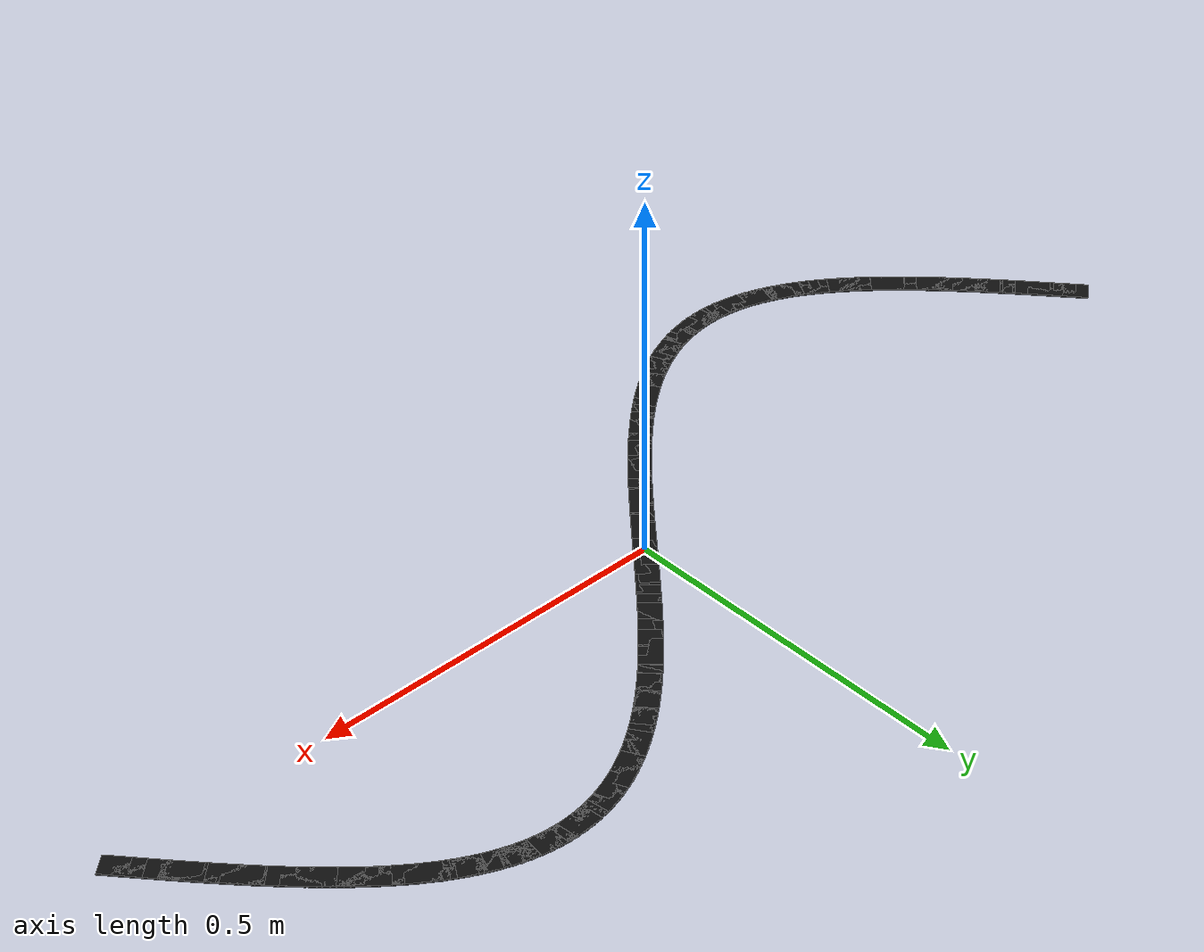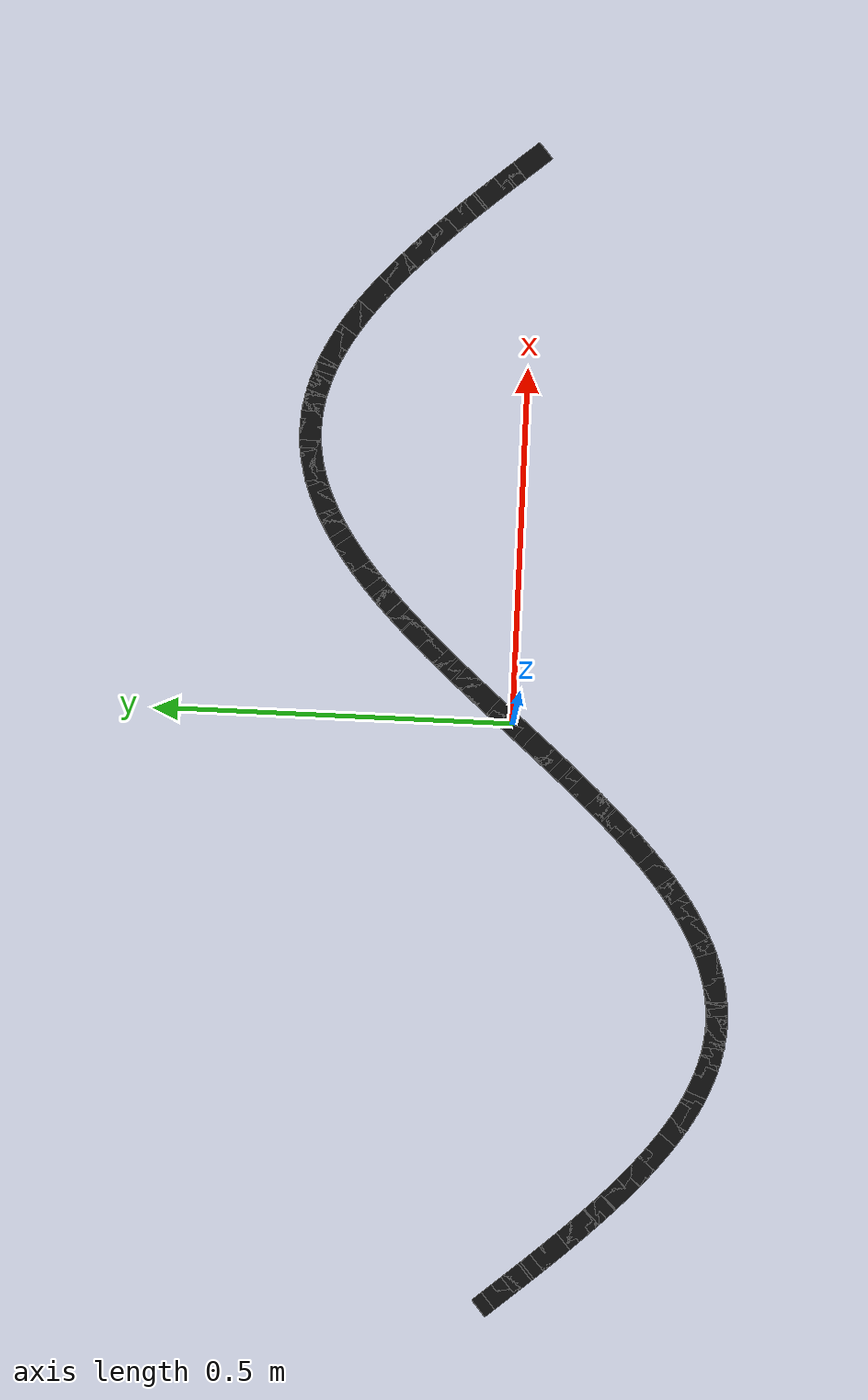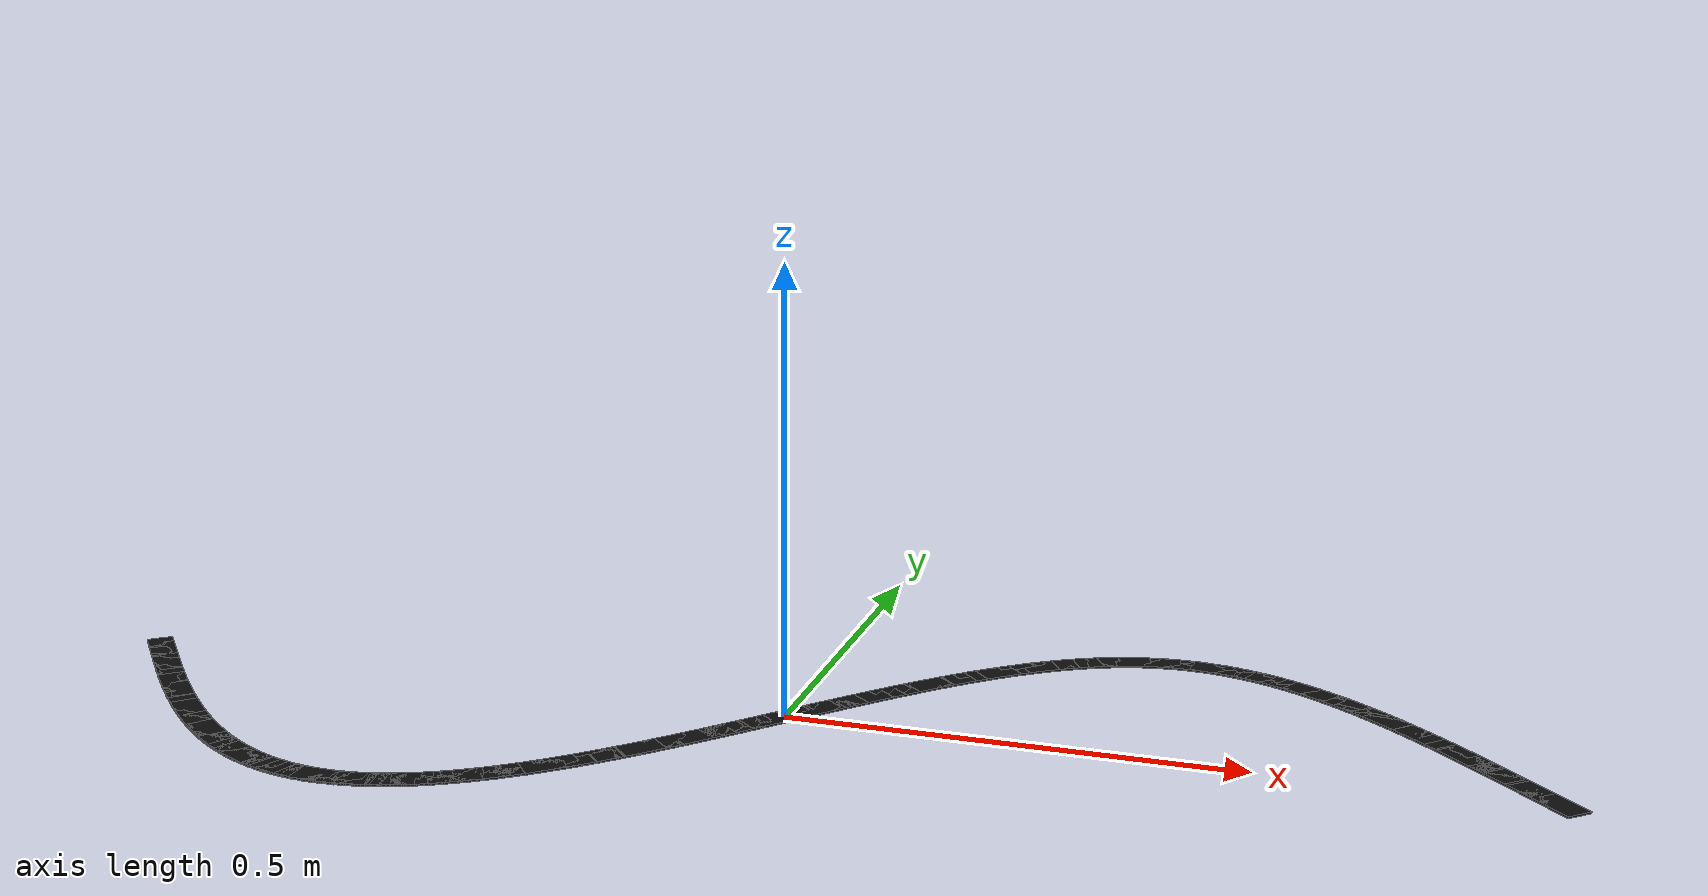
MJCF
<mujoco model="track_s_curve">
  <worldbody>
    <geom name="line_0" type="box" size="0.0236 0.015 0.001" pos="-0.7944 -0.0065 0.001" quat="0.907537 0 0 -0.419971" contype="0" conaffinity="0" group="2" rgba="0.05 0.05 0.05 1"/>
    <geom name="line_1" type="box" size="0.0236 0.015 0.001" pos="-0.7833 -0.0196 0.001" quat="0.907735 0 0 -0.419545" contype="0" conaffinity="0" group="2" rgba="0.05 0.05 0.05 1"/>
    <geom name="line_2" type="box" size="0.0236 0.015 0.001" pos="-0.7722 -0.0327 0.001" quat="0.908130 0 0 -0.418689" contype="0" conaffinity="0" group="2" rgba="0.05 0.05 0.05 1"/>
    <geom name="line_3" type="box" size="0.0235 0.015 0.001" pos="-0.7611 -0.0456 0.001" quat="0.908723 0 0 -0.417400" contype="0" conaffinity="0" group="2" rgba="0.05 0.05 0.05 1"/>
    <geom name="line_4" type="box" size="0.0235 0.015 0.001" pos="-0.7500 -0.0585 0.001" quat="0.909516 0 0 -0.415670" contype="0" conaffinity="0" group="2" rgba="0.05 0.05 0.05 1"/>
    <geom name="line_5" type="box" size="0.0234 0.015 0.001" pos="-0.7389 -0.0713 0.001" quat="0.910509 0 0 -0.413490" contype="0" conaffinity="0" group="2" rgba="0.05 0.05 0.05 1"/>
    <geom name="line_6" type="box" size="0.0234 0.015 0.001" pos="-0.7278 -0.0839 0.001" quat="0.911704 0 0 -0.410849" contype="0" conaffinity="0" group="2" rgba="0.05 0.05 0.05 1"/>
    <geom name="line_7" type="box" size="0.0233 0.015 0.001" pos="-0.7167 -0.0964 0.001" quat="0.913102 0 0 -0.407731" contype="0" conaffinity="0" group="2" rgba="0.05 0.05 0.05 1"/>
    <geom name="line_8" type="box" size="0.0233 0.015 0.001" pos="-0.7056 -0.1087 0.001" quat="0.914706 0 0 -0.404120" contype="0" conaffinity="0" group="2" rgba="0.05 0.05 0.05 1"/>
    <geom name="line_9" type="box" size="0.0232 0.015 0.001" pos="-0.6944 -0.1208 0.001" quat="0.916516 0 0 -0.399997" contype="0" conaffinity="0" group="2" rgba="0.05 0.05 0.05 1"/>
    <geom name="line_10" type="box" size="0.0231 0.015 0.001" pos="-0.6833 -0.1327 0.001" quat="0.918535 0 0 -0.395339" contype="0" conaffinity="0" group="2" rgba="0.05 0.05 0.05 1"/>
    <geom name="line_11" type="box" size="0.0230 0.015 0.001" pos="-0.6722 -0.1443 0.001" quat="0.920764 0 0 -0.390121" contype="0" conaffinity="0" group="2" rgba="0.05 0.05 0.05 1"/>
    <geom name="line_12" type="box" size="0.0229 0.015 0.001" pos="-0.6611 -0.1556 0.001" quat="0.923202 0 0 -0.384314" contype="0" conaffinity="0" group="2" rgba="0.05 0.05 0.05 1"/>
    <geom name="line_13" type="box" size="0.0228 0.015 0.001" pos="-0.6500 -0.1666 0.001" quat="0.925851 0 0 -0.377889" contype="0" conaffinity="0" group="2" rgba="0.05 0.05 0.05 1"/>
    <geom name="line_14" type="box" size="0.0227 0.015 0.001" pos="-0.6389 -0.1774 0.001" quat="0.928709 0 0 -0.370809" contype="0" conaffinity="0" group="2" rgba="0.05 0.05 0.05 1"/>
    <geom name="line_15" type="box" size="0.0225 0.015 0.001" pos="-0.6278 -0.1877 0.001" quat="0.931774 0 0 -0.363039" contype="0" conaffinity="0" group="2" rgba="0.05 0.05 0.05 1"/>
    <geom name="line_16" type="box" size="0.0224 0.015 0.001" pos="-0.6167 -0.1978 0.001" quat="0.935041 0 0 -0.354539" contype="0" conaffinity="0" group="2" rgba="0.05 0.05 0.05 1"/>
    <geom name="line_17" type="box" size="0.0223 0.015 0.001" pos="-0.6056 -0.2074 0.001" quat="0.938505 0 0 -0.345266" contype="0" conaffinity="0" group="2" rgba="0.05 0.05 0.05 1"/>
    <geom name="line_18" type="box" size="0.0222 0.015 0.001" pos="-0.5944 -0.2167 0.001" quat="0.942156 0 0 -0.335176" contype="0" conaffinity="0" group="2" rgba="0.05 0.05 0.05 1"/>
    <geom name="line_19" type="box" size="0.0220 0.015 0.001" pos="-0.5833 -0.2255 0.001" quat="0.945981 0 0 -0.324222" contype="0" conaffinity="0" group="2" rgba="0.05 0.05 0.05 1"/>
    <geom name="line_20" type="box" size="0.0219 0.015 0.001" pos="-0.5722 -0.2339 0.001" quat="0.949964 0 0 -0.312359" contype="0" conaffinity="0" group="2" rgba="0.05 0.05 0.05 1"/>
    <geom name="line_21" type="box" size="0.0218 0.015 0.001" pos="-0.5611 -0.2419 0.001" quat="0.954084 0 0 -0.299538" contype="0" conaffinity="0" group="2" rgba="0.05 0.05 0.05 1"/>
    <geom name="line_22" type="box" size="0.0216 0.015 0.001" pos="-0.5500 -0.2494 0.001" quat="0.958314 0 0 -0.285716" contype="0" conaffinity="0" group="2" rgba="0.05 0.05 0.05 1"/>
    <geom name="line_23" type="box" size="0.0215 0.015 0.001" pos="-0.5389 -0.2564 0.001" quat="0.962621 0 0 -0.270851" contype="0" conaffinity="0" group="2" rgba="0.05 0.05 0.05 1"/>
    <geom name="line_24" type="box" size="0.0214 0.015 0.001" pos="-0.5278 -0.2630 0.001" quat="0.966966 0 0 -0.254907" contype="0" conaffinity="0" group="2" rgba="0.05 0.05 0.05 1"/>
    <geom name="line_25" type="box" size="0.0213 0.015 0.001" pos="-0.5167 -0.2690 0.001" quat="0.971300 0 0 -0.237858" contype="0" conaffinity="0" group="2" rgba="0.05 0.05 0.05 1"/>
    <geom name="line_26" type="box" size="0.0211 0.015 0.001" pos="-0.5056 -0.2745 0.001" quat="0.975570 0 0 -0.219688" contype="0" conaffinity="0" group="2" rgba="0.05 0.05 0.05 1"/>
    <geom name="line_27" type="box" size="0.0210 0.015 0.001" pos="-0.4944 -0.2795 0.001" quat="0.979715 0 0 -0.200396" contype="0" conaffinity="0" group="2" rgba="0.05 0.05 0.05 1"/>
    <geom name="line_28" type="box" size="0.0209 0.015 0.001" pos="-0.4833 -0.2840 0.001" quat="0.983667 0 0 -0.180000" contype="0" conaffinity="0" group="2" rgba="0.05 0.05 0.05 1"/>
    <geom name="line_29" type="box" size="0.0208 0.015 0.001" pos="-0.4722 -0.2879 0.001" quat="0.987353 0 0 -0.158540" contype="0" conaffinity="0" group="2" rgba="0.05 0.05 0.05 1"/>
    <geom name="line_30" type="box" size="0.0208 0.015 0.001" pos="-0.4611 -0.2913 0.001" quat="0.990698 0 0 -0.136078" contype="0" conaffinity="0" group="2" rgba="0.05 0.05 0.05 1"/>
    <geom name="line_31" type="box" size="0.0207 0.015 0.001" pos="-0.4500 -0.2942 0.001" quat="0.993628 0 0 -0.112707" contype="0" conaffinity="0" group="2" rgba="0.05 0.05 0.05 1"/>
    <geom name="line_32" type="box" size="0.0206 0.015 0.001" pos="-0.4389 -0.2964 0.001" quat="0.996072 0 0 -0.088544" contype="0" conaffinity="0" group="2" rgba="0.05 0.05 0.05 1"/>
    <geom name="line_33" type="box" size="0.0206 0.015 0.001" pos="-0.4278 -0.2981 0.001" quat="0.997967 0 0 -0.063731" contype="0" conaffinity="0" group="2" rgba="0.05 0.05 0.05 1"/>
    <geom name="line_34" type="box" size="0.0206 0.015 0.001" pos="-0.4167 -0.2993 0.001" quat="0.999261 0 0 -0.038437" contype="0" conaffinity="0" group="2" rgba="0.05 0.05 0.05 1"/>
    <geom name="line_35" type="box" size="0.0206 0.015 0.001" pos="-0.4056 -0.2999 0.001" quat="0.999917 0 0 -0.012846" contype="0" conaffinity="0" group="2" rgba="0.05 0.05 0.05 1"/>
    <geom name="line_36" type="box" size="0.0206 0.015 0.001" pos="-0.3944 -0.2999 0.001" quat="0.999917 0 0 0.012846" contype="0" conaffinity="0" group="2" rgba="0.05 0.05 0.05 1"/>
    <geom name="line_37" type="box" size="0.0206 0.015 0.001" pos="-0.3833 -0.2993 0.001" quat="0.999261 0 0 0.038437" contype="0" conaffinity="0" group="2" rgba="0.05 0.05 0.05 1"/>
    <geom name="line_38" type="box" size="0.0206 0.015 0.001" pos="-0.3722 -0.2981 0.001" quat="0.997967 0 0 0.063731" contype="0" conaffinity="0" group="2" rgba="0.05 0.05 0.05 1"/>
    <geom name="line_39" type="box" size="0.0206 0.015 0.001" pos="-0.3611 -0.2964 0.001" quat="0.996072 0 0 0.088544" contype="0" conaffinity="0" group="2" rgba="0.05 0.05 0.05 1"/>
    <geom name="line_40" type="box" size="0.0207 0.015 0.001" pos="-0.3500 -0.2942 0.001" quat="0.993628 0 0 0.112707" contype="0" conaffinity="0" group="2" rgba="0.05 0.05 0.05 1"/>
    <geom name="line_41" type="box" size="0.0208 0.015 0.001" pos="-0.3389 -0.2913 0.001" quat="0.990698 0 0 0.136078" contype="0" conaffinity="0" group="2" rgba="0.05 0.05 0.05 1"/>
    <geom name="line_42" type="box" size="0.0208 0.015 0.001" pos="-0.3278 -0.2879 0.001" quat="0.987353 0 0 0.158540" contype="0" conaffinity="0" group="2" rgba="0.05 0.05 0.05 1"/>
    <geom name="line_43" type="box" size="0.0209 0.015 0.001" pos="-0.3167 -0.2840 0.001" quat="0.983667 0 0 0.180000" contype="0" conaffinity="0" group="2" rgba="0.05 0.05 0.05 1"/>
    <geom name="line_44" type="box" size="0.0210 0.015 0.001" pos="-0.3056 -0.2795 0.001" quat="0.979715 0 0 0.200396" contype="0" conaffinity="0" group="2" rgba="0.05 0.05 0.05 1"/>
    <geom name="line_45" type="box" size="0.0211 0.015 0.001" pos="-0.2944 -0.2745 0.001" quat="0.975570 0 0 0.219688" contype="0" conaffinity="0" group="2" rgba="0.05 0.05 0.05 1"/>
    <geom name="line_46" type="box" size="0.0213 0.015 0.001" pos="-0.2833 -0.2690 0.001" quat="0.971300 0 0 0.237858" contype="0" conaffinity="0" group="2" rgba="0.05 0.05 0.05 1"/>
    <geom name="line_47" type="box" size="0.0214 0.015 0.001" pos="-0.2722 -0.2630 0.001" quat="0.966966 0 0 0.254907" contype="0" conaffinity="0" group="2" rgba="0.05 0.05 0.05 1"/>
    <geom name="line_48" type="box" size="0.0215 0.015 0.001" pos="-0.2611 -0.2564 0.001" quat="0.962621 0 0 0.270851" contype="0" conaffinity="0" group="2" rgba="0.05 0.05 0.05 1"/>
    <geom name="line_49" type="box" size="0.0216 0.015 0.001" pos="-0.2500 -0.2494 0.001" quat="0.958314 0 0 0.285716" contype="0" conaffinity="0" group="2" rgba="0.05 0.05 0.05 1"/>
    <geom name="line_50" type="box" size="0.0218 0.015 0.001" pos="-0.2389 -0.2419 0.001" quat="0.954084 0 0 0.299538" contype="0" conaffinity="0" group="2" rgba="0.05 0.05 0.05 1"/>
    <geom name="line_51" type="box" size="0.0219 0.015 0.001" pos="-0.2278 -0.2339 0.001" quat="0.949964 0 0 0.312359" contype="0" conaffinity="0" group="2" rgba="0.05 0.05 0.05 1"/>
    <geom name="line_52" type="box" size="0.0220 0.015 0.001" pos="-0.2167 -0.2255 0.001" quat="0.945981 0 0 0.324222" contype="0" conaffinity="0" group="2" rgba="0.05 0.05 0.05 1"/>
    <geom name="line_53" type="box" size="0.0222 0.015 0.001" pos="-0.2056 -0.2167 0.001" quat="0.942156 0 0 0.335176" contype="0" conaffinity="0" group="2" rgba="0.05 0.05 0.05 1"/>
    <geom name="line_54" type="box" size="0.0223 0.015 0.001" pos="-0.1944 -0.2074 0.001" quat="0.938505 0 0 0.345266" contype="0" conaffinity="0" group="2" rgba="0.05 0.05 0.05 1"/>
    <geom name="line_55" type="box" size="0.0224 0.015 0.001" pos="-0.1833 -0.1978 0.001" quat="0.935041 0 0 0.354539" contype="0" conaffinity="0" group="2" rgba="0.05 0.05 0.05 1"/>
    <geom name="line_56" type="box" size="0.0225 0.015 0.001" pos="-0.1722 -0.1877 0.001" quat="0.931774 0 0 0.363039" contype="0" conaffinity="0" group="2" rgba="0.05 0.05 0.05 1"/>
    <geom name="line_57" type="box" size="0.0227 0.015 0.001" pos="-0.1611 -0.1774 0.001" quat="0.928709 0 0 0.370809" contype="0" conaffinity="0" group="2" rgba="0.05 0.05 0.05 1"/>
    <geom name="line_58" type="box" size="0.0228 0.015 0.001" pos="-0.1500 -0.1666 0.001" quat="0.925851 0 0 0.377889" contype="0" conaffinity="0" group="2" rgba="0.05 0.05 0.05 1"/>
    <geom name="line_59" type="box" size="0.0229 0.015 0.001" pos="-0.1389 -0.1556 0.001" quat="0.923202 0 0 0.384314" contype="0" conaffinity="0" group="2" rgba="0.05 0.05 0.05 1"/>
    <geom name="line_60" type="box" size="0.0230 0.015 0.001" pos="-0.1278 -0.1443 0.001" quat="0.920764 0 0 0.390121" contype="0" conaffinity="0" group="2" rgba="0.05 0.05 0.05 1"/>
    <geom name="line_61" type="box" size="0.0231 0.015 0.001" pos="-0.1167 -0.1327 0.001" quat="0.918535 0 0 0.395339" contype="0" conaffinity="0" group="2" rgba="0.05 0.05 0.05 1"/>
    <geom name="line_62" type="box" size="0.0232 0.015 0.001" pos="-0.1056 -0.1208 0.001" quat="0.916516 0 0 0.399997" contype="0" conaffinity="0" group="2" rgba="0.05 0.05 0.05 1"/>
    <geom name="line_63" type="box" size="0.0233 0.015 0.001" pos="-0.0944 -0.1087 0.001" quat="0.914706 0 0 0.404120" contype="0" conaffinity="0" group="2" rgba="0.05 0.05 0.05 1"/>
    <geom name="line_64" type="box" size="0.0233 0.015 0.001" pos="-0.0833 -0.0964 0.001" quat="0.913102 0 0 0.407731" contype="0" conaffinity="0" group="2" rgba="0.05 0.05 0.05 1"/>
    <geom name="line_65" type="box" size="0.0234 0.015 0.001" pos="-0.0722 -0.0839 0.001" quat="0.911704 0 0 0.410849" contype="0" conaffinity="0" group="2" rgba="0.05 0.05 0.05 1"/>
    <geom name="line_66" type="box" size="0.0234 0.015 0.001" pos="-0.0611 -0.0713 0.001" quat="0.910509 0 0 0.413490" contype="0" conaffinity="0" group="2" rgba="0.05 0.05 0.05 1"/>
    <geom name="line_67" type="box" size="0.0235 0.015 0.001" pos="-0.0500 -0.0585 0.001" quat="0.909516 0 0 0.415670" contype="0" conaffinity="0" group="2" rgba="0.05 0.05 0.05 1"/>
    <geom name="line_68" type="box" size="0.0235 0.015 0.001" pos="-0.0389 -0.0456 0.001" quat="0.908723 0 0 0.417400" contype="0" conaffinity="0" group="2" rgba="0.05 0.05 0.05 1"/>
    <geom name="line_69" type="box" size="0.0236 0.015 0.001" pos="-0.0278 -0.0327 0.001" quat="0.908130 0 0 0.418689" contype="0" conaffinity="0" group="2" rgba="0.05 0.05 0.05 1"/>
    <geom name="line_70" type="box" size="0.0236 0.015 0.001" pos="-0.0167 -0.0196 0.001" quat="0.907735 0 0 0.419545" contype="0" conaffinity="0" group="2" rgba="0.05 0.05 0.05 1"/>
    <geom name="line_71" type="box" size="0.0236 0.015 0.001" pos="-0.0056 -0.0065 0.001" quat="0.907537 0 0 0.419971" contype="0" conaffinity="0" group="2" rgba="0.05 0.05 0.05 1"/>
    <geom name="line_72" type="box" size="0.0236 0.015 0.001" pos="0.0056 0.0065 0.001" quat="0.907537 0 0 0.419971" contype="0" conaffinity="0" group="2" rgba="0.05 0.05 0.05 1"/>
    <geom name="line_73" type="box" size="0.0236 0.015 0.001" pos="0.0167 0.0196 0.001" quat="0.907735 0 0 0.419545" contype="0" conaffinity="0" group="2" rgba="0.05 0.05 0.05 1"/>
    <geom name="line_74" type="box" size="0.0236 0.015 0.001" pos="0.0278 0.0327 0.001" quat="0.908130 0 0 0.418689" contype="0" conaffinity="0" group="2" rgba="0.05 0.05 0.05 1"/>
    <geom name="line_75" type="box" size="0.0235 0.015 0.001" pos="0.0389 0.0456 0.001" quat="0.908723 0 0 0.417400" contype="0" conaffinity="0" group="2" rgba="0.05 0.05 0.05 1"/>
    <geom name="line_76" type="box" size="0.0235 0.015 0.001" pos="0.0500 0.0585 0.001" quat="0.909516 0 0 0.415670" contype="0" conaffinity="0" group="2" rgba="0.05 0.05 0.05 1"/>
    <geom name="line_77" type="box" size="0.0234 0.015 0.001" pos="0.0611 0.0713 0.001" quat="0.910509 0 0 0.413490" contype="0" conaffinity="0" group="2" rgba="0.05 0.05 0.05 1"/>
    <geom name="line_78" type="box" size="0.0234 0.015 0.001" pos="0.0722 0.0839 0.001" quat="0.911704 0 0 0.410849" contype="0" conaffinity="0" group="2" rgba="0.05 0.05 0.05 1"/>
    <geom name="line_79" type="box" size="0.0233 0.015 0.001" pos="0.0833 0.0964 0.001" quat="0.913102 0 0 0.407731" contype="0" conaffinity="0" group="2" rgba="0.05 0.05 0.05 1"/>
    <geom name="line_80" type="box" size="0.0233 0.015 0.001" pos="0.0944 0.1087 0.001" quat="0.914706 0 0 0.404120" contype="0" conaffinity="0" group="2" rgba="0.05 0.05 0.05 1"/>
    <geom name="line_81" type="box" size="0.0232 0.015 0.001" pos="0.1056 0.1208 0.001" quat="0.916516 0 0 0.399997" contype="0" conaffinity="0" group="2" rgba="0.05 0.05 0.05 1"/>
    <geom name="line_82" type="box" size="0.0231 0.015 0.001" pos="0.1167 0.1327 0.001" quat="0.918535 0 0 0.395339" contype="0" conaffinity="0" group="2" rgba="0.05 0.05 0.05 1"/>
    <geom name="line_83" type="box" size="0.0230 0.015 0.001" pos="0.1278 0.1443 0.001" quat="0.920764 0 0 0.390121" contype="0" conaffinity="0" group="2" rgba="0.05 0.05 0.05 1"/>
    <geom name="line_84" type="box" size="0.0229 0.015 0.001" pos="0.1389 0.1556 0.001" quat="0.923202 0 0 0.384314" contype="0" conaffinity="0" group="2" rgba="0.05 0.05 0.05 1"/>
    <geom name="line_85" type="box" size="0.0228 0.015 0.001" pos="0.1500 0.1666 0.001" quat="0.925851 0 0 0.377889" contype="0" conaffinity="0" group="2" rgba="0.05 0.05 0.05 1"/>
    <geom name="line_86" type="box" size="0.0227 0.015 0.001" pos="0.1611 0.1774 0.001" quat="0.928709 0 0 0.370809" contype="0" conaffinity="0" group="2" rgba="0.05 0.05 0.05 1"/>
    <geom name="line_87" type="box" size="0.0225 0.015 0.001" pos="0.1722 0.1877 0.001" quat="0.931774 0 0 0.363039" contype="0" conaffinity="0" group="2" rgba="0.05 0.05 0.05 1"/>
    <geom name="line_88" type="box" size="0.0224 0.015 0.001" pos="0.1833 0.1978 0.001" quat="0.935041 0 0 0.354539" contype="0" conaffinity="0" group="2" rgba="0.05 0.05 0.05 1"/>
    <geom name="line_89" type="box" size="0.0223 0.015 0.001" pos="0.1944 0.2074 0.001" quat="0.938505 0 0 0.345266" contype="0" conaffinity="0" group="2" rgba="0.05 0.05 0.05 1"/>
    <geom name="line_90" type="box" size="0.0222 0.015 0.001" pos="0.2056 0.2167 0.001" quat="0.942156 0 0 0.335176" contype="0" conaffinity="0" group="2" rgba="0.05 0.05 0.05 1"/>
    <geom name="line_91" type="box" size="0.0220 0.015 0.001" pos="0.2167 0.2255 0.001" quat="0.945981 0 0 0.324222" contype="0" conaffinity="0" group="2" rgba="0.05 0.05 0.05 1"/>
    <geom name="line_92" type="box" size="0.0219 0.015 0.001" pos="0.2278 0.2339 0.001" quat="0.949964 0 0 0.312359" contype="0" conaffinity="0" group="2" rgba="0.05 0.05 0.05 1"/>
    <geom name="line_93" type="box" size="0.0218 0.015 0.001" pos="0.2389 0.2419 0.001" quat="0.954084 0 0 0.299538" contype="0" conaffinity="0" group="2" rgba="0.05 0.05 0.05 1"/>
    <geom name="line_94" type="box" size="0.0216 0.015 0.001" pos="0.2500 0.2494 0.001" quat="0.958314 0 0 0.285716" contype="0" conaffinity="0" group="2" rgba="0.05 0.05 0.05 1"/>
    <geom name="line_95" type="box" size="0.0215 0.015 0.001" pos="0.2611 0.2564 0.001" quat="0.962621 0 0 0.270851" contype="0" conaffinity="0" group="2" rgba="0.05 0.05 0.05 1"/>
    <geom name="line_96" type="box" size="0.0214 0.015 0.001" pos="0.2722 0.2630 0.001" quat="0.966966 0 0 0.254907" contype="0" conaffinity="0" group="2" rgba="0.05 0.05 0.05 1"/>
    <geom name="line_97" type="box" size="0.0213 0.015 0.001" pos="0.2833 0.2690 0.001" quat="0.971300 0 0 0.237858" contype="0" conaffinity="0" group="2" rgba="0.05 0.05 0.05 1"/>
    <geom name="line_98" type="box" size="0.0211 0.015 0.001" pos="0.2944 0.2745 0.001" quat="0.975570 0 0 0.219688" contype="0" conaffinity="0" group="2" rgba="0.05 0.05 0.05 1"/>
    <geom name="line_99" type="box" size="0.0210 0.015 0.001" pos="0.3056 0.2795 0.001" quat="0.979715 0 0 0.200396" contype="0" conaffinity="0" group="2" rgba="0.05 0.05 0.05 1"/>
    <geom name="line_100" type="box" size="0.0209 0.015 0.001" pos="0.3167 0.2840 0.001" quat="0.983667 0 0 0.180000" contype="0" conaffinity="0" group="2" rgba="0.05 0.05 0.05 1"/>
    <geom name="line_101" type="box" size="0.0208 0.015 0.001" pos="0.3278 0.2879 0.001" quat="0.987353 0 0 0.158540" contype="0" conaffinity="0" group="2" rgba="0.05 0.05 0.05 1"/>
    <geom name="line_102" type="box" size="0.0208 0.015 0.001" pos="0.3389 0.2913 0.001" quat="0.990698 0 0 0.136078" contype="0" conaffinity="0" group="2" rgba="0.05 0.05 0.05 1"/>
    <geom name="line_103" type="box" size="0.0207 0.015 0.001" pos="0.3500 0.2942 0.001" quat="0.993628 0 0 0.112707" contype="0" conaffinity="0" group="2" rgba="0.05 0.05 0.05 1"/>
    <geom name="line_104" type="box" size="0.0206 0.015 0.001" pos="0.3611 0.2964 0.001" quat="0.996072 0 0 0.088544" contype="0" conaffinity="0" group="2" rgba="0.05 0.05 0.05 1"/>
    <geom name="line_105" type="box" size="0.0206 0.015 0.001" pos="0.3722 0.2981 0.001" quat="0.997967 0 0 0.063731" contype="0" conaffinity="0" group="2" rgba="0.05 0.05 0.05 1"/>
    <geom name="line_106" type="box" size="0.0206 0.015 0.001" pos="0.3833 0.2993 0.001" quat="0.999261 0 0 0.038437" contype="0" conaffinity="0" group="2" rgba="0.05 0.05 0.05 1"/>
    <geom name="line_107" type="box" size="0.0206 0.015 0.001" pos="0.3944 0.2999 0.001" quat="0.999917 0 0 0.012846" contype="0" conaffinity="0" group="2" rgba="0.05 0.05 0.05 1"/>
    <geom name="line_108" type="box" size="0.0206 0.015 0.001" pos="0.4056 0.2999 0.001" quat="0.999917 0 0 -0.012846" contype="0" conaffinity="0" group="2" rgba="0.05 0.05 0.05 1"/>
    <geom name="line_109" type="box" size="0.0206 0.015 0.001" pos="0.4167 0.2993 0.001" quat="0.999261 0 0 -0.038437" contype="0" conaffinity="0" group="2" rgba="0.05 0.05 0.05 1"/>
    <geom name="line_110" type="box" size="0.0206 0.015 0.001" pos="0.4278 0.2981 0.001" quat="0.997967 0 0 -0.063731" contype="0" conaffinity="0" group="2" rgba="0.05 0.05 0.05 1"/>
    <geom name="line_111" type="box" size="0.0206 0.015 0.001" pos="0.4389 0.2964 0.001" quat="0.996072 0 0 -0.088544" contype="0" conaffinity="0" group="2" rgba="0.05 0.05 0.05 1"/>
    <geom name="line_112" type="box" size="0.0207 0.015 0.001" pos="0.4500 0.2942 0.001" quat="0.993628 0 0 -0.112707" contype="0" conaffinity="0" group="2" rgba="0.05 0.05 0.05 1"/>
    <geom name="line_113" type="box" size="0.0208 0.015 0.001" pos="0.4611 0.2913 0.001" quat="0.990698 0 0 -0.136078" contype="0" conaffinity="0" group="2" rgba="0.05 0.05 0.05 1"/>
    <geom name="line_114" type="box" size="0.0208 0.015 0.001" pos="0.4722 0.2879 0.001" quat="0.987353 0 0 -0.158540" contype="0" conaffinity="0" group="2" rgba="0.05 0.05 0.05 1"/>
    <geom name="line_115" type="box" size="0.0209 0.015 0.001" pos="0.4833 0.2840 0.001" quat="0.983667 0 0 -0.180000" contype="0" conaffinity="0" group="2" rgba="0.05 0.05 0.05 1"/>
    <geom name="line_116" type="box" size="0.0210 0.015 0.001" pos="0.4944 0.2795 0.001" quat="0.979715 0 0 -0.200396" contype="0" conaffinity="0" group="2" rgba="0.05 0.05 0.05 1"/>
    <geom name="line_117" type="box" size="0.0211 0.015 0.001" pos="0.5056 0.2745 0.001" quat="0.975570 0 0 -0.219688" contype="0" conaffinity="0" group="2" rgba="0.05 0.05 0.05 1"/>
    <geom name="line_118" type="box" size="0.0213 0.015 0.001" pos="0.5167 0.2690 0.001" quat="0.971300 0 0 -0.237858" contype="0" conaffinity="0" group="2" rgba="0.05 0.05 0.05 1"/>
    <geom name="line_119" type="box" size="0.0214 0.015 0.001" pos="0.5278 0.2630 0.001" quat="0.966966 0 0 -0.254907" contype="0" conaffinity="0" group="2" rgba="0.05 0.05 0.05 1"/>
    <geom name="line_120" type="box" size="0.0215 0.015 0.001" pos="0.5389 0.2564 0.001" quat="0.962621 0 0 -0.270851" contype="0" conaffinity="0" group="2" rgba="0.05 0.05 0.05 1"/>
    <geom name="line_121" type="box" size="0.0216 0.015 0.001" pos="0.5500 0.2494 0.001" quat="0.958314 0 0 -0.285716" contype="0" conaffinity="0" group="2" rgba="0.05 0.05 0.05 1"/>
    <geom name="line_122" type="box" size="0.0218 0.015 0.001" pos="0.5611 0.2419 0.001" quat="0.954084 0 0 -0.299538" contype="0" conaffinity="0" group="2" rgba="0.05 0.05 0.05 1"/>
    <geom name="line_123" type="box" size="0.0219 0.015 0.001" pos="0.5722 0.2339 0.001" quat="0.949964 0 0 -0.312359" contype="0" conaffinity="0" group="2" rgba="0.05 0.05 0.05 1"/>
    <geom name="line_124" type="box" size="0.0220 0.015 0.001" pos="0.5833 0.2255 0.001" quat="0.945981 0 0 -0.324222" contype="0" conaffinity="0" group="2" rgba="0.05 0.05 0.05 1"/>
    <geom name="line_125" type="box" size="0.0222 0.015 0.001" pos="0.5944 0.2167 0.001" quat="0.942156 0 0 -0.335176" contype="0" conaffinity="0" group="2" rgba="0.05 0.05 0.05 1"/>
    <geom name="line_126" type="box" size="0.0223 0.015 0.001" pos="0.6056 0.2074 0.001" quat="0.938505 0 0 -0.345266" contype="0" conaffinity="0" group="2" rgba="0.05 0.05 0.05 1"/>
    <geom name="line_127" type="box" size="0.0224 0.015 0.001" pos="0.6167 0.1978 0.001" quat="0.935041 0 0 -0.354539" contype="0" conaffinity="0" group="2" rgba="0.05 0.05 0.05 1"/>
    <geom name="line_128" type="box" size="0.0225 0.015 0.001" pos="0.6278 0.1877 0.001" quat="0.931774 0 0 -0.363039" contype="0" conaffinity="0" group="2" rgba="0.05 0.05 0.05 1"/>
    <geom name="line_129" type="box" size="0.0227 0.015 0.001" pos="0.6389 0.1774 0.001" quat="0.928709 0 0 -0.370809" contype="0" conaffinity="0" group="2" rgba="0.05 0.05 0.05 1"/>
    <geom name="line_130" type="box" size="0.0228 0.015 0.001" pos="0.6500 0.1666 0.001" quat="0.925851 0 0 -0.377889" contype="0" conaffinity="0" group="2" rgba="0.05 0.05 0.05 1"/>
    <geom name="line_131" type="box" size="0.0229 0.015 0.001" pos="0.6611 0.1556 0.001" quat="0.923202 0 0 -0.384314" contype="0" conaffinity="0" group="2" rgba="0.05 0.05 0.05 1"/>
    <geom name="line_132" type="box" size="0.0230 0.015 0.001" pos="0.6722 0.1443 0.001" quat="0.920764 0 0 -0.390121" contype="0" conaffinity="0" group="2" rgba="0.05 0.05 0.05 1"/>
    <geom name="line_133" type="box" size="0.0231 0.015 0.001" pos="0.6833 0.1327 0.001" quat="0.918535 0 0 -0.395339" contype="0" conaffinity="0" group="2" rgba="0.05 0.05 0.05 1"/>
    <geom name="line_134" type="box" size="0.0232 0.015 0.001" pos="0.6944 0.1208 0.001" quat="0.916516 0 0 -0.399997" contype="0" conaffinity="0" group="2" rgba="0.05 0.05 0.05 1"/>
    <geom name="line_135" type="box" size="0.0233 0.015 0.001" pos="0.7056 0.1087 0.001" quat="0.914706 0 0 -0.404120" contype="0" conaffinity="0" group="2" rgba="0.05 0.05 0.05 1"/>
    <geom name="line_136" type="box" size="0.0233 0.015 0.001" pos="0.7167 0.0964 0.001" quat="0.913102 0 0 -0.407731" contype="0" conaffinity="0" group="2" rgba="0.05 0.05 0.05 1"/>
    <geom name="line_137" type="box" size="0.0234 0.015 0.001" pos="0.7278 0.0839 0.001" quat="0.911704 0 0 -0.410849" contype="0" conaffinity="0" group="2" rgba="0.05 0.05 0.05 1"/>
    <geom name="line_138" type="box" size="0.0234 0.015 0.001" pos="0.7389 0.0713 0.001" quat="0.910509 0 0 -0.413490" contype="0" conaffinity="0" group="2" rgba="0.05 0.05 0.05 1"/>
    <geom name="line_139" type="box" size="0.0235 0.015 0.001" pos="0.7500 0.0585 0.001" quat="0.909516 0 0 -0.415670" contype="0" conaffinity="0" group="2" rgba="0.05 0.05 0.05 1"/>
    <geom name="line_140" type="box" size="0.0235 0.015 0.001" pos="0.7611 0.0456 0.001" quat="0.908723 0 0 -0.417400" contype="0" conaffinity="0" group="2" rgba="0.05 0.05 0.05 1"/>
    <geom name="line_141" type="box" size="0.0236 0.015 0.001" pos="0.7722 0.0327 0.001" quat="0.908130 0 0 -0.418689" contype="0" conaffinity="0" group="2" rgba="0.05 0.05 0.05 1"/>
    <geom name="line_142" type="box" size="0.0236 0.015 0.001" pos="0.7833 0.0196 0.001" quat="0.907735 0 0 -0.419545" contype="0" conaffinity="0" group="2" rgba="0.05 0.05 0.05 1"/>
    <geom name="line_143" type="box" size="0.0236 0.015 0.001" pos="0.7944 0.0065 0.001" quat="0.907537 0 0 -0.419971" contype="0" conaffinity="0" group="2" rgba="0.05 0.05 0.05 1"/>
  </worldbody>
</mujoco>
